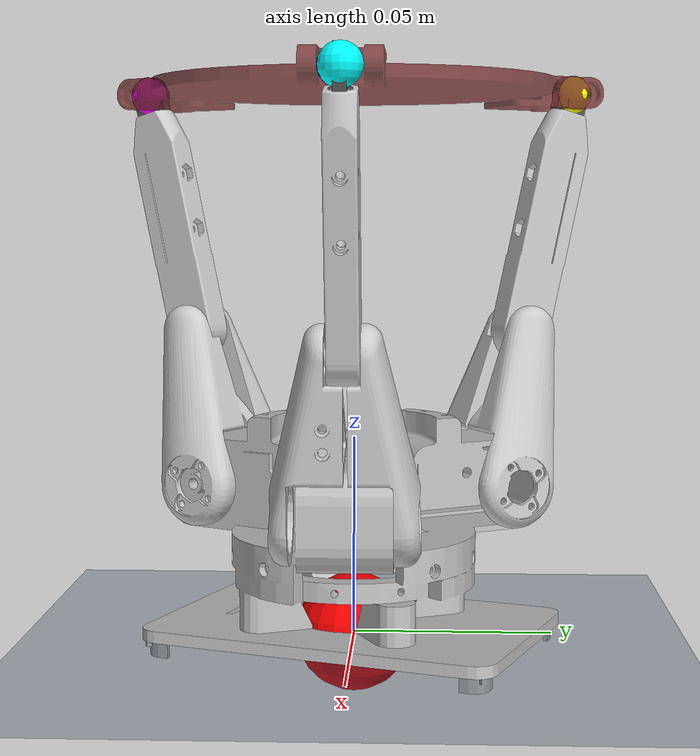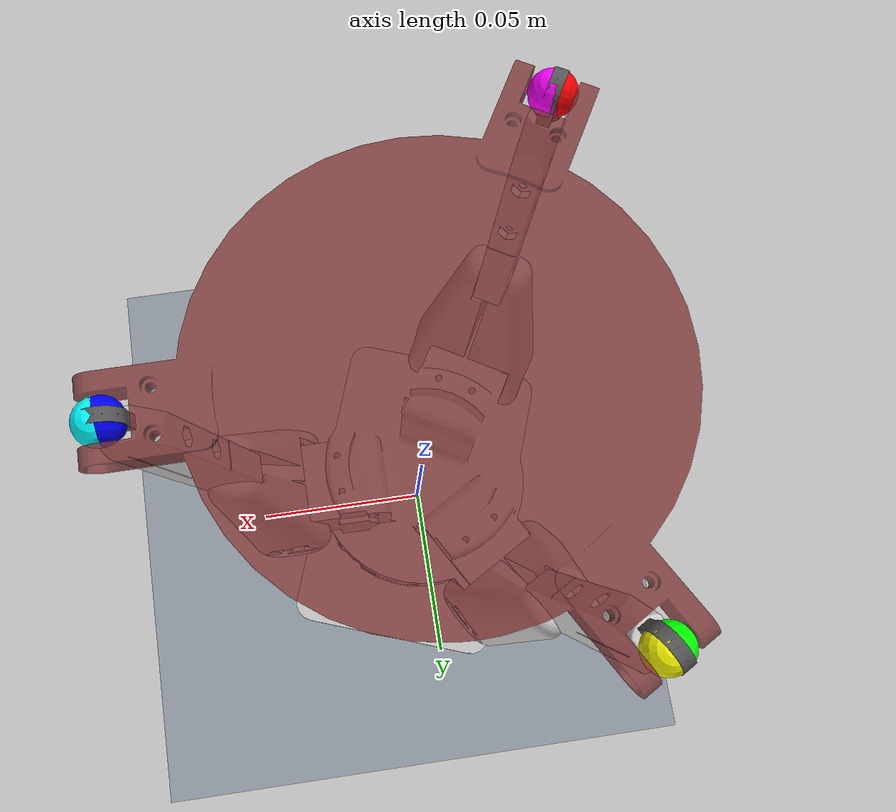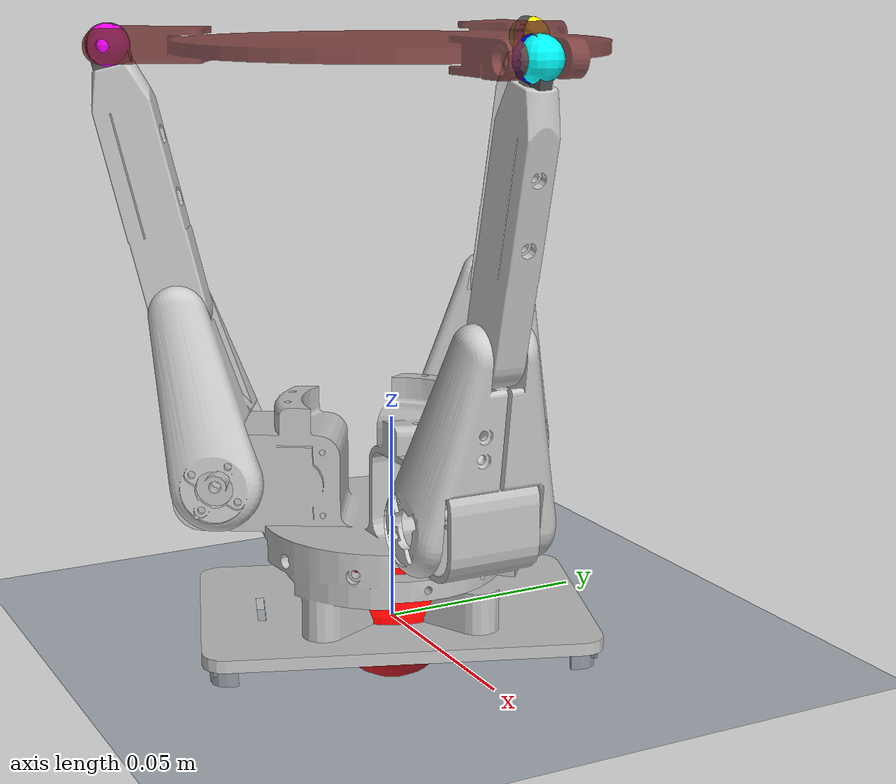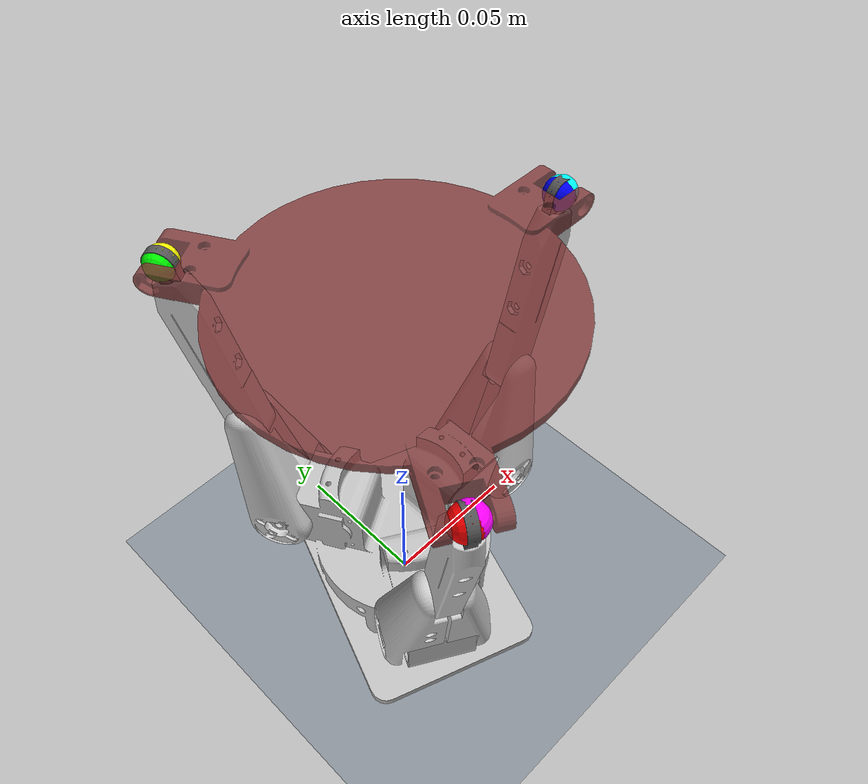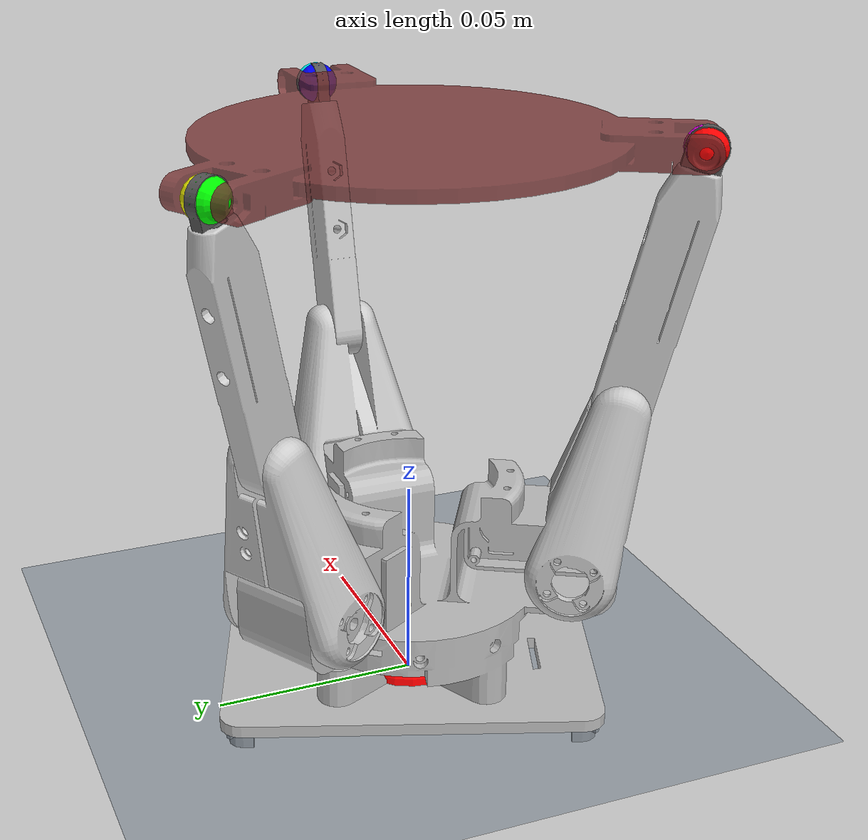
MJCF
<mujoco model="Assembly3RRS">
  <compiler angle="radian"/>
  <option gravity="0 0 0"/>
  <asset>
    <mesh name="base_link" content_type="model/stl" file="meshes/base_link.STL"/>
    <mesh name="Actuated1" content_type="model/stl" file="meshes/Actuated1.STL"/>
    <mesh name="Unactuated1" content_type="model/stl" file="meshes/Unactuated1.STL"/>
    <mesh name="Ball1" content_type="model/stl" file="meshes/Ball1.STL"/>
    <mesh name="Actuated2" content_type="model/stl" file="meshes/Actuated2.STL"/>
    <mesh name="Unactuated2" content_type="model/stl" file="meshes/Unactuated2.STL"/>
    <mesh name="Ball2" content_type="model/stl" file="meshes/Ball2.STL"/>
    <mesh name="Actuated3" content_type="model/stl" file="meshes/Actuated3.STL"/>
    <mesh name="Unactuated3" content_type="model/stl" file="meshes/Unactuated3.STL"/>
    <mesh name="Ball3" content_type="model/stl" file="meshes/Ball3.STL"/>

    <mesh name="Top" content_type="model/stl" file="meshes/Top.STL"/>
    <texture name="grid" type="2d" builtin="checker" rgb1=".1 .2 .3"
     rgb2=".2 .3 .4" width="300" height="300"/>
    <material name="grid" texture="grid" texrepeat="8 8" reflectance=".2"/>

  </asset>

  <worldbody>
    <geom size=".2 .2 .01" type="plane" material="grid"/>

    <body name="base" pos="0 0 0">
        <geom type="mesh" rgba="0.74902 0.74902 0.74902 1" mesh="base_link"  />
        <site name="my_object_center" pos="0 0 0" size="0.015" type="sphere" rgba="1 0 0 1"/> <!-- just for visualisation of centre-->
    </body>

    <body name="Actuated1" pos="-0.0353488 -0.0262506 0.0363" quat="0.612372 -0.612372 -0.353553 0.353553">
      <joint name="Actuated1Joint" axis="0 0 -1"/>
      <geom type="mesh" rgba="0.8 0.8 0.8 1" mesh="Actuated1"  contype="0" conaffinity="0" />
      <body name="Unactuated1" pos="-0.00954794 -0.0388438 -0.01315">
        <joint name="Unactuated1Joint" axis="0 0 -1"/>
        <geom type="mesh" rgba="0.8 0.8 0.8 1" mesh="Unactuated1"  contype="0" conaffinity="0"/>
        <geom pos="-0.0153955 -0.062327 -0.00375" quat="1 0 0 0" type="mesh" rgba="0.333333 0.333333 0.333333 1" mesh="Ball1" />
            <site name="ball1Centre" pos="-0.0153955 -0.062327 -0.00375" size="0.005" type="sphere" rgba="1 0 0 1"/> <!-- just for visualisation of centre-->
      </body>
    </body>

    <body name="Actuated2" pos="-0.0059039 0.0430314 0.0363" quat="0.612372 -0.612372 0.353553 -0.353553">
      <joint name="Acutated2Joint" axis="0 0 -1"/>
      <geom type="mesh" rgba="0.8 0.8 0.8 1" mesh="Actuated2"  contype="0" conaffinity="0" />
      <body name="Unactuated2" pos="-0.00954933 -0.0388434 -0.01315">
        <joint name="Unactuated2Joint" axis="0 0 -1"/>
        <geom type="mesh" rgba="0.8 0.8 0.8 1" mesh="Unactuated2"  contype="0" conaffinity="0" />
        <geom pos="-0.0153943 -0.0623273 -0.00375" quat="0.707107 0 0 0.707107" type="mesh" rgba="0.333333 0.333333 0.333333 1" mesh="Ball2"  />
            <site name="ball2Centre" pos="-0.0153943 -0.0623273 -0.00375" size="0.005" type="sphere" rgba="0 1 0 1"/> <!-- just for visualisation of centre-->

      </body>
    </body>

    <body name="Actuated3" pos="0.0393737 -0.0171096 0.0363" quat="0.707107 0.707107 0 0">
      <joint name="Actuated3Jont" axis="0 0 -1"/>
      <geom type="mesh" rgba="0.8 0.8 0.8 1" mesh="Actuated3" contype="0" conaffinity="0"/>
      <body name="Unactuated3" pos="0.0095617 0.0388404 -0.01315">
        <joint name="Unactuated3Joint" axis="0 0 -1"/>
        <geom type="mesh" rgba="0.8 0.8 0.8 1" mesh="Unactuated3" contype="0" conaffinity="0" />
        <geom pos="0.0154082 0.0623239 -0.00375" quat="1 0 0 0" type="mesh" rgba="0.333333 0.333333 0.333333 1" mesh="Ball3"/>
          <site name="ball3Centre" pos="0.0154082 0.0623239 -0.00375" size="0.005" type="sphere" rgba="0 0 1 1"/> <!-- just for visualisation of centre-->
      </body>
    </body>

    <body name="Top" pos="0 0 0.138969" >
    <freejoint name="top_freejoint"/> <!-- CRITICAL: Allows the platform to move -->
    <geom type="mesh" rgba="0.5 0.2 0.2 0.8" mesh="Top" contype="0" conaffinity="0"/>
        <site name="ball3Top" pos="0.065125 -0.0001 -0.001504 " size="0.005" type="sphere" rgba="0 1 1 1"/>

        <site name="ball1Top" pos="-0.032649  -0.05635  -0.001504 " size="0.005" type="sphere" rgba="1 0 1 1"/>

        <site name="ball2Top" pos="-0.032476  0.05645   -0.001504 " size="0.005" type="sphere" rgba="1 1 0 1"/>

    </body>
  </worldbody>

  <!--For close loop constraints-->
  <equality>

    <connect name="kinematic_link3" active="true" body1="Unactuated3" body2="Top" anchor="0.0154082 0.0623239 -0.00375" solref="0.0001 1" solimp="0.9999 0.9999 0.0001 0.5 2" />
    <connect name="kinematic_link2" active="true" body1="Unactuated2" body2="Top" anchor="-0.0153943 -0.0623273 -0.00375" solref="0.0001 1" solimp="0.9999 0.9999 0.0001 0.5 2" />
    <connect name="kinematic_link1" active="true" body1="Unactuated1" body2="Top" anchor="-0.0153955 -0.062327 -0.00375" solref="0.0001 1" solimp="0.9999 0.9999 0.0001 0.5 2" />

  </equality>

  <actuator>
    <general name="leg1_ctrl" joint="Actuated1Joint"  />
    <general name="leg2_ctrl" joint="Acutated2Joint"  />
    <general name="leg3_ctrl" joint="Actuated3Jont"   />
  </actuator>

</mujoco>
